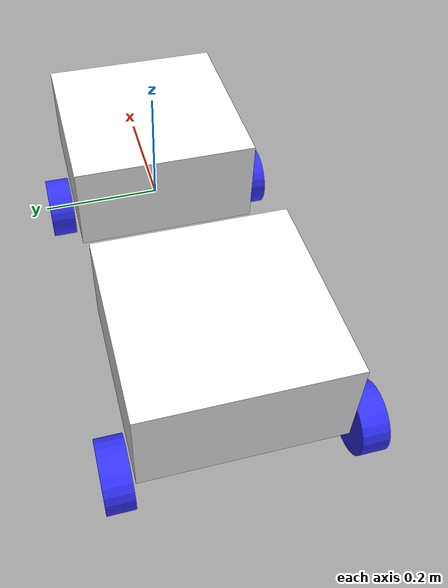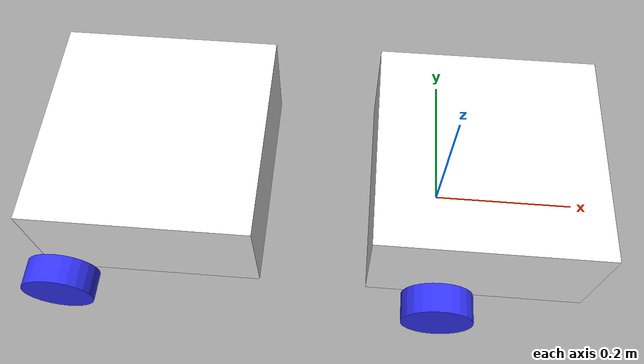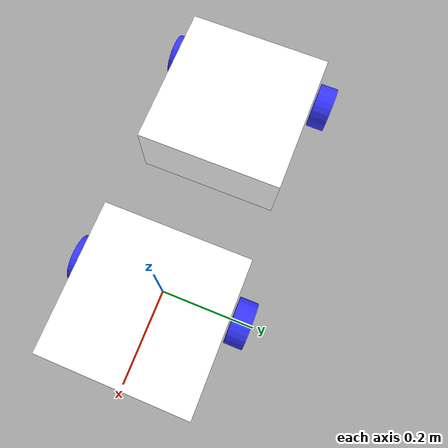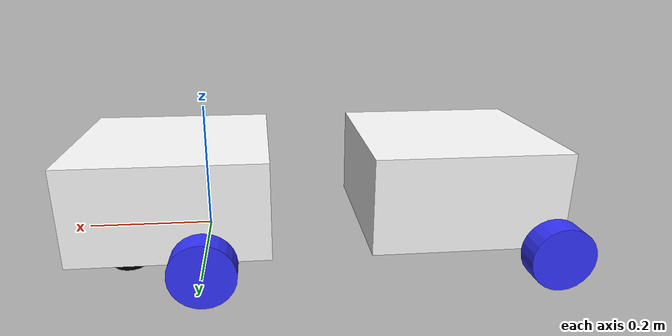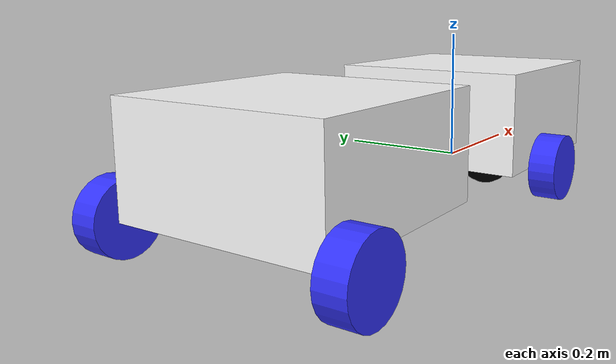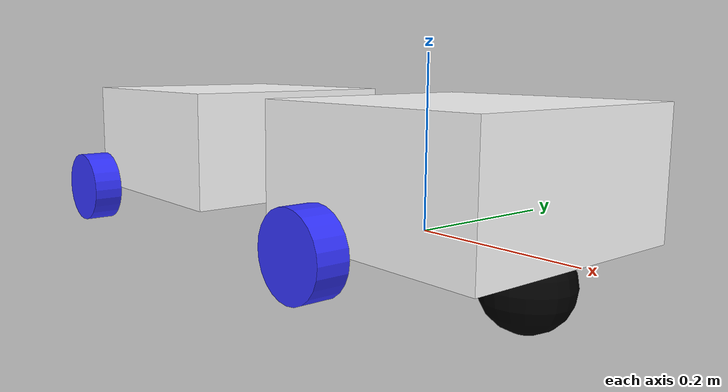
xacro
<?xml version="1.0"?>
<robot xmlns:xacro="http://www.ros.org/wiki/xacro"  name="robot">

    <xacro:include filename="robot_core.xacro" />

</robot>

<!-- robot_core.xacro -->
<robot xmlns:xacro="http://www.ros.org/wiki/xacro">
    <xacro:include filename="inertial_macros.xacro" />

    <material name="white">
        <color rgba="1 1 1 1"/>
    </material>

    <material name="orange">
        <color rgba="1 0.3 0.1 1"/>
    </material>

    <material name="blue">
        <color rgba="0.2 0.2 1 1"/>
    </material>

    <material name="black">
        <color rgba="0 0 0 1"/>
    </material>

    <link name="base_link">
    </link>

    <joint name="base_footprint_joint" type="fixed">
        <parent link="base_link"/>
        <child link="base_footprint"/>
        <origin xyz="0 0 0" rpy="0 0 0"/>
    </joint>

    <link name="base_footprint">
    </link>

    <joint name="chassis_joint" type="fixed">
        <parent link="base_link"/>
        <child link="chassis"/>
        <origin xyz="-0.1 0 0"/>
    </joint>

    <link name="chassis">
        <visual>
            <origin xyz="0.15 0 0.075" rpy="0 0 0"/>
            <geometry>
                <box size="0.3 0.3 0.15"/>
            </geometry>
            <material name="white"/>
        </visual>
        <collision>
            <origin xyz="0.15 0 0.075" rpy="0 0 0"/>
            <geometry>
                <box size="0.3 0.3 0.15"/>
            </geometry>
        </collision>
        <xacro:inertial_box mass="0.5" x="0.3" y="0.3" z="0.15">
            <origin xyz="0.15 0 0.075" rpy="0 0 0"/>
        </xacro:inertial_box>
    </link>

    <gazebo reference="chassis">
        <material>Gazebo/White</material>
    </gazebo>

    <!-- LEFT WHEEL -->
    <joint name="left_wheel_joint" type="continuous">
        <parent link="base_link"/>
        <child link="left_wheel"/>
        <origin xyz="0 0.175 0" rpy="-${pi/2} 0 0"/>
        <axis xyz="0 0 1"/>
    </joint>

    <link name="left_wheel">
        <visual>
            <geometry>
                <cylinder length="0.04" radius="0.05" />
            </geometry>
            <material name="blue"/>
        </visual>
        <collision>
            <geometry>
                <cylinder length="0.04" radius="0.05" />
            </geometry>
        </collision>
        <xacro:inertial_cylinder mass="0.1" length="0.05" radius="0.05">
            <origin xyz="0 0 0" rpy="0 0 0"/>
        </xacro:inertial_cylinder>
    </link>

    <gazebo reference="left_wheel">
        <material>Gazebo/Blue</material>
    </gazebo>

    <!-- RIGHT WHEEL -->
    <joint name="right_wheel_joint" type="continuous">
        <parent link="base_link"/>
        <child link="right_wheel"/>
        <origin xyz="0 -0.175 0" rpy="${pi/2} 0 0"/>
        <axis xyz="0 0 -1"/>
    </joint>

    <link name="right_wheel">
        <visual>
            <geometry>
                <cylinder length="0.04" radius="0.05" />
            </geometry>
            <material name="blue"/>
        </visual>
        <collision>
            <geometry>
                <cylinder length="0.04" radius="0.05" />
            </geometry>
        </collision>
        <xacro:inertial_cylinder mass="0.1" length="0.05" radius="0.05">
            <origin xyz="0 0 0" rpy="0 0 0"/>
        </xacro:inertial_cylinder>
    </link>

    <gazebo reference="right_wheel">
        <material>Gazebo/Blue</material>
    </gazebo>

    <!-- CASTER WHEEL -->
    <joint name="caster_wheel_joint" type="fixed">
        <parent link="chassis"/>
        <child link="caster_wheel"/>
        <origin xyz="0.24 0 -0.03" rpy="0 0 0"/>
    </joint>

    <link name="caster_wheel">
        <visual>
            <geometry>
                <sphere radius="0.05" />
            </geometry>
            <material name="black"/>
        </visual>
        <collision>
            <geometry>
                <cylinder length="0.04" radius="0.05" />
            </geometry>
        </collision>
        <xacro:inertial_sphere mass="0.1" radius="0.05">
            <origin xyz="0 0 0" rpy="0 0 0"/>
        </xacro:inertial_sphere>
    </link>

    <gazebo reference="caster_wheel">
        <material>Gazebo/Black</material>
        <mu1 value="0.5"/>
        <mu2 value="0.5"/>
    </gazebo>

    <!-- CART -->
    <joint name="cart_joint" type="revolute">
        <parent link="chassis"/>
        <child link="cart"/>
        <origin xyz="-0.15 0 0" rpy="0 0 ${pi}"/>
        <axis xyz="0 0 1"/>
        <limit effort="10" velocity="1.0" lower="-1.57" upper="1.57"/>
    </joint>

    <link name="cart">
        <visual>
            <origin xyz="0.15 0 0.075" rpy="0 0 0"/>
            <geometry>
                <box size="0.3 0.3 0.15"/>
            </geometry>
            <material name="white"/>
        </visual>
        <collision>
            <origin xyz="0.15 0 0.075" rpy="0 0 0"/>
            <geometry>
                <box size="0.3 0.3 0.15"/>
            </geometry>
        </collision>
        <xacro:inertial_box mass="0.5" x="0.3" y="0.3" z="0.15">
            <origin xyz="0.15 0 0.075" rpy="0 0 0"/>
        </xacro:inertial_box>
    </link>

    <!-- LEFT WHEEL -->
    <joint name="cart_left_wheel_joint" type="continuous">
        <parent link="cart"/>
        <child link="cart_left_wheel"/>
        <origin xyz="0.28 0.175 0" rpy="-${pi/2} 0 0"/>
        <axis xyz="0 0 1"/>
    </joint>

    <link name="cart_left_wheel">
        <visual>
            <geometry>
                <cylinder length="0.04" radius="0.05" />
            </geometry>
            <material name="blue"/>
        </visual>
        <collision>
            <geometry>
                <cylinder length="0.04" radius="0.05" />
            </geometry>
        </collision>
        <xacro:inertial_cylinder mass="0.1" length="0.05" radius="0.05">
            <origin xyz="0 0 0" rpy="0 0 0"/>
        </xacro:inertial_cylinder>
    </link>

    <gazebo reference="cart_left_wheel">
        <material>Gazebo/Blue</material>
    </gazebo>

    <!-- RIGHT WHEEL -->
    <joint name="cart_right_wheel_joint" type="continuous">
        <parent link="cart"/>
        <child link="cart_right_wheel"/>
        <origin xyz="0.28 -0.175 0" rpy="${pi/2} 0 0"/>
        <axis xyz="0 0 -1"/>
    </joint>

    <link name="cart_right_wheel">
        <visual>
            <geometry>
                <cylinder length="0.04" radius="0.05" />
            </geometry>
            <material name="blue"/>
        </visual>
        <collision>
            <geometry>
                <cylinder length="0.04" radius="0.05" />
            </geometry>
        </collision>
        <xacro:inertial_cylinder mass="0.1" length="0.05" radius="0.05">
            <origin xyz="0 0 0" rpy="0 0 0"/>
        </xacro:inertial_cylinder>
    </link>

    <gazebo reference="cart_right_wheel">
        <material>Gazebo/Blue</material>
    </gazebo>

    <!-- CART 2 -->

    <!-- LEFT WHEEL -->

    <!-- RIGHT WHEEL -->

    <!-- gazebo_ros_joint_state_publisher plugin to publish joint states for all joints -->
    <gazebo>
        <plugin name="joint_state_publisher" filename="libgazebo_ros_joint_state_publisher.so">
            <joint_names>left_wheel_joint right_wheel_joint cart_joint cart_left_wheel_joint cart_right_wheel_joint</joint_names>
        </plugin>
    </gazebo>

</robot>
